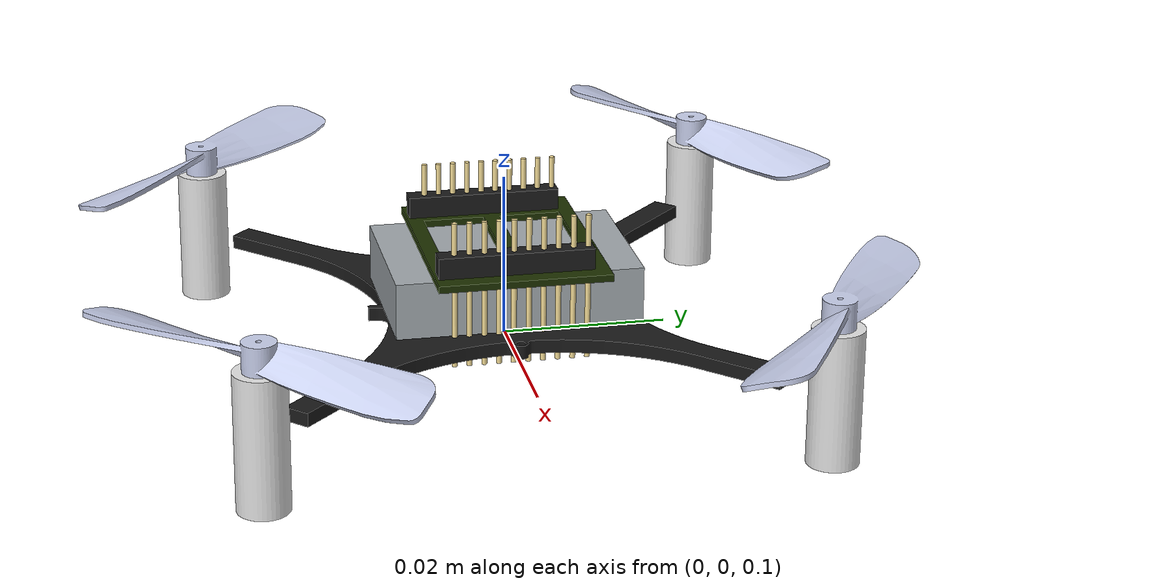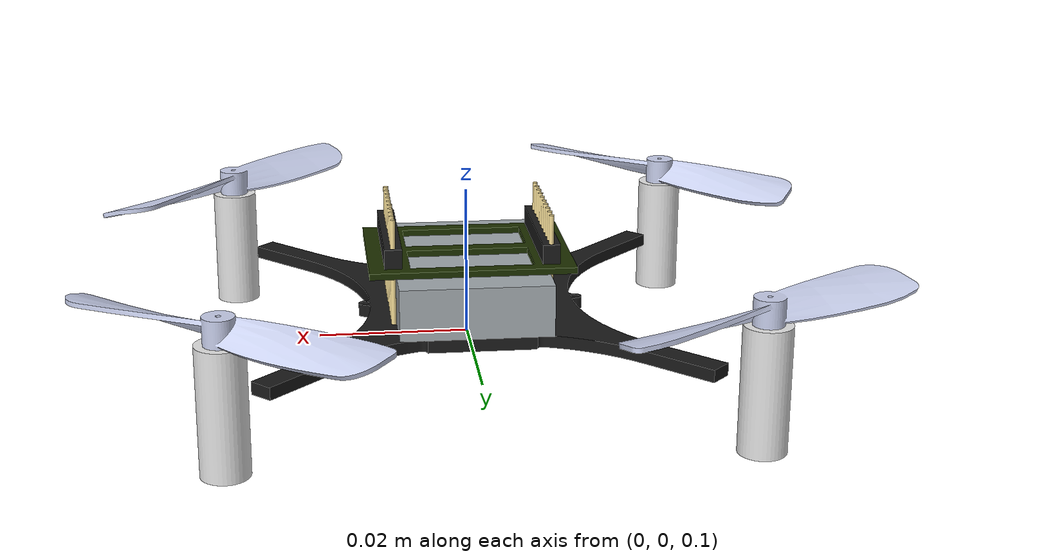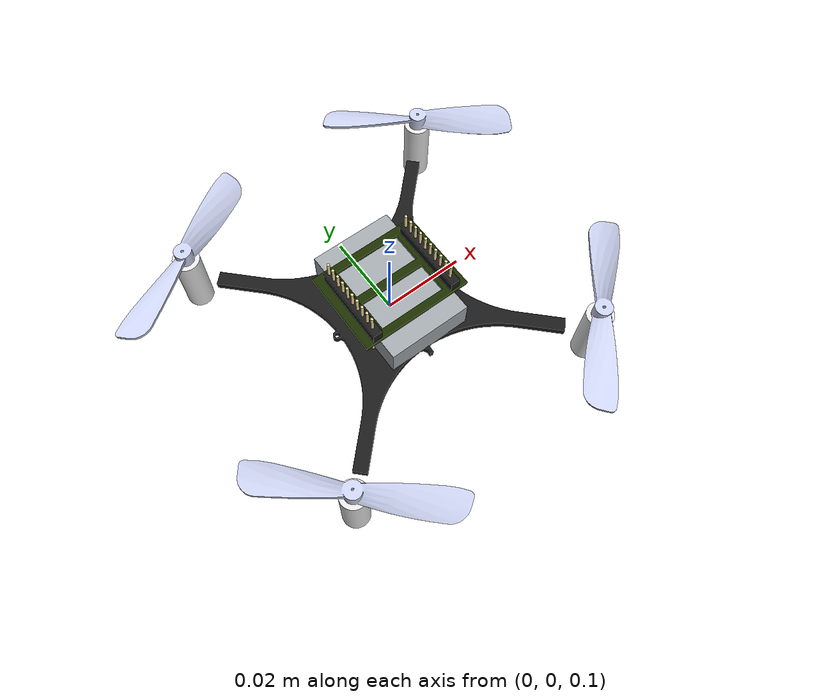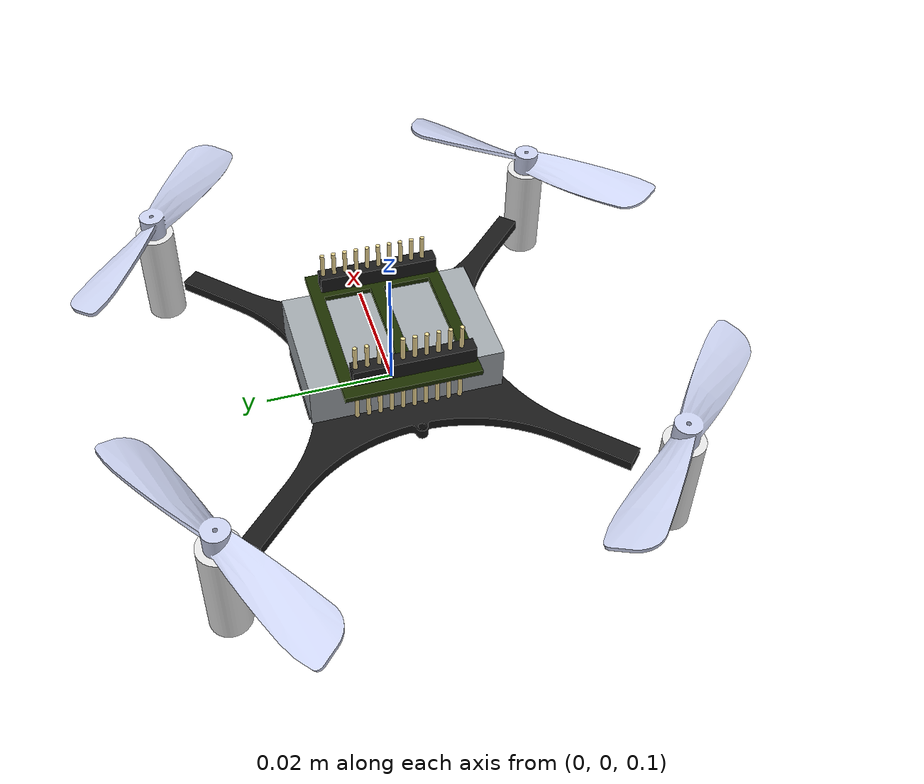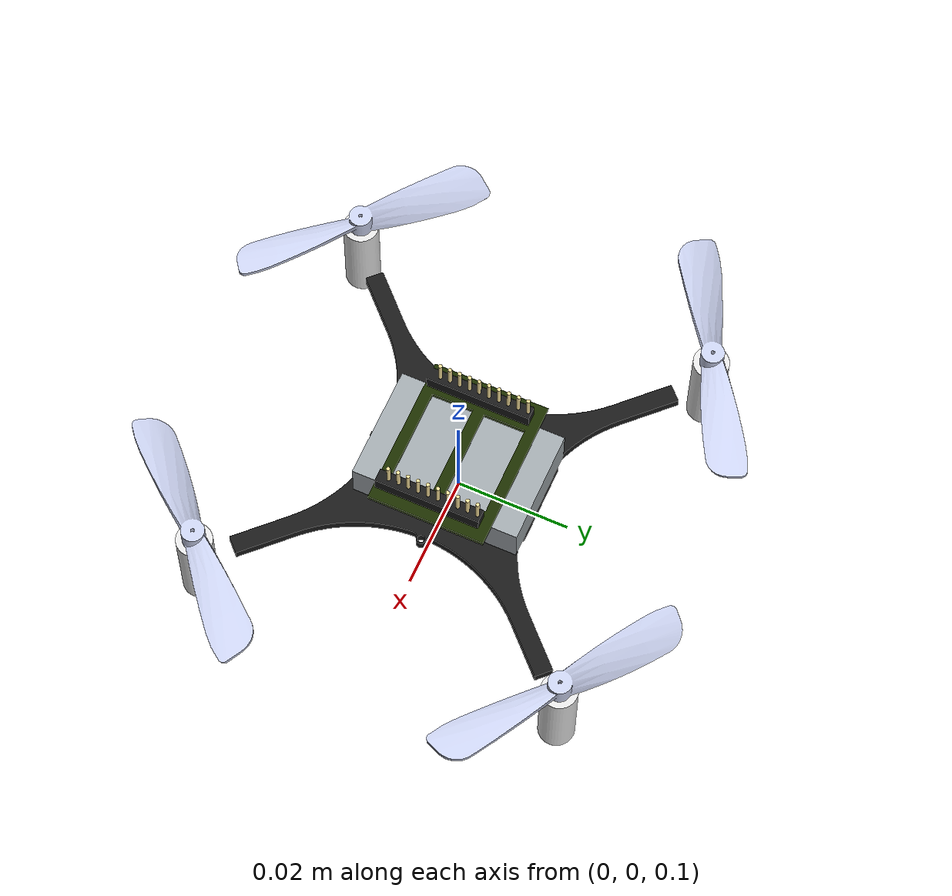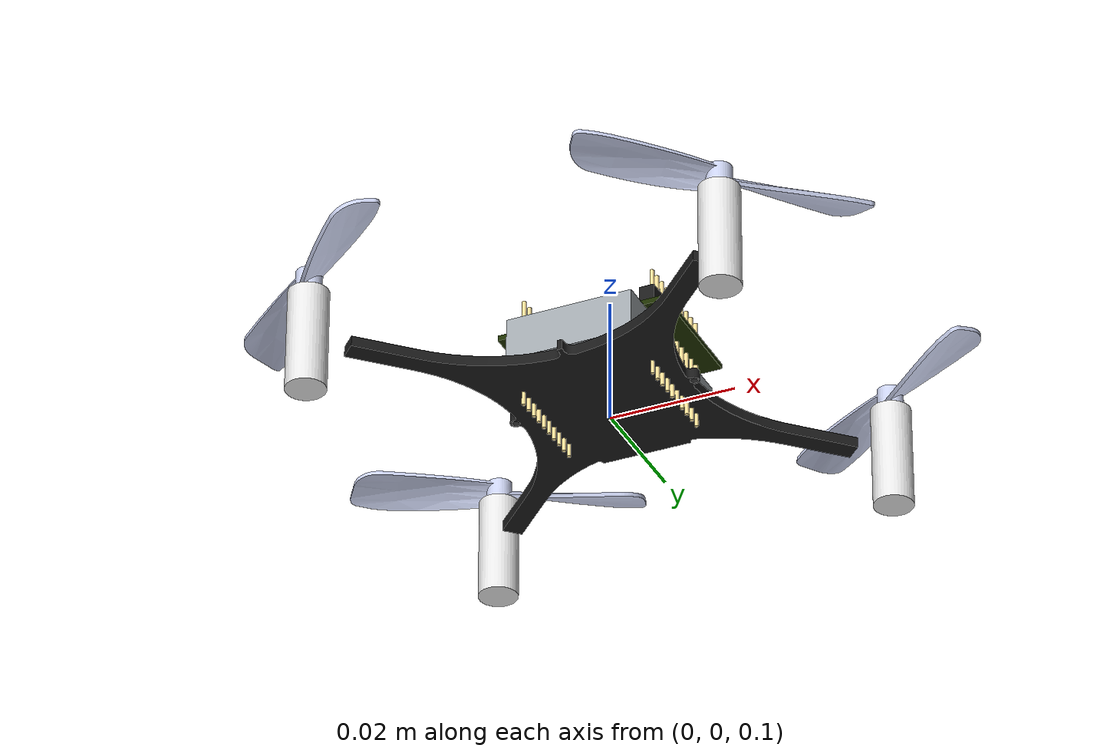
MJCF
<mujoco model="MuJoCo Model">
  <compiler angle="radian"/>

  <default>
    <geom type="mesh"/>
    <site group="5"/>
  </default>

  <asset>
    <material name="polished_plastic" rgba="0.631 0.659 0.678 1"/>
    <material name="polished_gold" rgba="0.969 0.878 0.6 1"/>
    <material name="medium_gloss_plastic" rgba="0.109 0.184 0 1"/>
    <material name="propeller_plastic" rgba="0.792 0.82 0.933 1"/>
    <material name="white"/>
    <material name="body_frame_plastic" rgba="0.102 0.102 0.102 1"/>
    <material name="burnished_chrome" rgba="0.898 0.898 0.898 1"/>
    <mesh name="cf2_0" file="../assets/cf2_0.obj"/>
    <mesh name="cf2_1" file="../assets/cf2_1.obj"/>
    <mesh name="cf2_2" file="../assets/cf2_2.obj"/>
    <mesh name="cf2_3" file="../assets/cf2_3.obj"/>
    <mesh name="cf2_4" file="../assets/cf2_4.obj"/>
    <mesh name="cf2_5" file="../assets/cf2_5.obj"/>
    <mesh name="cf2_collision_0" file="../assets/cf2_collision_0.obj"/>
    <mesh name="cf2_collision_1" file="../assets/cf2_collision_1.obj"/>
    <mesh name="cf2_collision_2" file="../assets/cf2_collision_2.obj"/>
    <mesh name="cf2_collision_3" file="../assets/cf2_collision_3.obj"/>
    <mesh name="cf2_collision_4" file="../assets/cf2_collision_4.obj"/>
    <mesh name="cf2_collision_5" file="../assets/cf2_collision_5.obj"/>
    <mesh name="cf2_collision_6" file="../assets/cf2_collision_6.obj"/>
    <mesh name="cf2_collision_7" file="../assets/cf2_collision_7.obj"/>
    <mesh name="cf2_collision_8" file="../assets/cf2_collision_8.obj"/>
    <mesh name="cf2_collision_9" file="../assets/cf2_collision_9.obj"/>
    <mesh name="cf2_collision_10" file="../assets/cf2_collision_10.obj"/>
    <mesh name="cf2_collision_11" file="../assets/cf2_collision_11.obj"/>
    <mesh name="cf2_collision_12" file="../assets/cf2_collision_12.obj"/>
    <mesh name="cf2_collision_13" file="../assets/cf2_collision_13.obj"/>
    <mesh name="cf2_collision_14" file="../assets/cf2_collision_14.obj"/>
    <mesh name="cf2_collision_15" file="../assets/cf2_collision_15.obj"/>
    <mesh name="cf2_collision_16" file="../assets/cf2_collision_16.obj"/>
    <mesh name="cf2_collision_17" file="../assets/cf2_collision_17.obj"/>
    <mesh name="cf2_collision_18" file="../assets/cf2_collision_18.obj"/>
    <mesh name="cf2_collision_19" file="../assets/cf2_collision_19.obj"/>
    <mesh name="cf2_collision_20" file="../assets/cf2_collision_20.obj"/>
    <mesh name="cf2_collision_21" file="../assets/cf2_collision_21.obj"/>
    <mesh name="cf2_collision_22" file="../assets/cf2_collision_22.obj"/>
    <mesh name="cf2_collision_23" file="../assets/cf2_collision_23.obj"/>
    <mesh name="cf2_collision_24" file="../assets/cf2_collision_24.obj"/>
    <mesh name="cf2_collision_25" file="../assets/cf2_collision_25.obj"/>
    <mesh name="cf2_collision_26" file="../assets/cf2_collision_26.obj"/>
    <mesh name="cf2_collision_27" file="../assets/cf2_collision_27.obj"/>
    <mesh name="cf2_collision_28" file="../assets/cf2_collision_28.obj"/>
    <mesh name="cf2_collision_29" file="../assets/cf2_collision_29.obj"/>
    <mesh name="cf2_collision_30" file="../assets/cf2_collision_30.obj"/>
  </asset>

  <worldbody>
    <light name="top" pos="0 0 1" dir="0 0 -1"/>
    <body name="cf2" pos="0 0 0.1">
      <joint type="free" limited="false" actuatorfrclimited="false"/>
      <geom name="cf2_0" contype="0" conaffinity="0" group="2" material="propeller_plastic" mesh="cf2_0"/>
      <geom name="cf2_1" contype="0" conaffinity="0" group="2" material="medium_gloss_plastic" mesh="cf2_1"/>
      <geom name="cf2_2" contype="0" conaffinity="0" group="2" material="polished_gold" mesh="cf2_2"/>
      <geom name="cf2_3" contype="0" conaffinity="0" group="2" material="polished_plastic" mesh="cf2_3"/>
      <geom name="cf2_4" contype="0" conaffinity="0" group="2" material="burnished_chrome" mesh="cf2_4"/>
      <geom name="cf2_5" contype="0" conaffinity="0" group="2" material="body_frame_plastic" mesh="cf2_5"/>
      <geom name="cf2_collision_0" group="3" mesh="cf2_collision_0"/>
      <geom name="cf2_collision_1" group="3" mesh="cf2_collision_1"/>
      <geom name="cf2_collision_2" group="3" mesh="cf2_collision_2"/>
      <geom name="cf2_collision_3" group="3" mesh="cf2_collision_3"/>
      <geom name="cf2_collision_4" group="3" mesh="cf2_collision_4"/>
      <geom name="cf2_collision_5" group="3" mesh="cf2_collision_5"/>
      <geom name="cf2_collision_6" group="3" mesh="cf2_collision_6"/>
      <geom name="cf2_collision_7" group="3" mesh="cf2_collision_7"/>
      <geom name="cf2_collision_8" group="3" mesh="cf2_collision_8"/>
      <geom name="cf2_collision_9" group="3" mesh="cf2_collision_9"/>
      <geom name="cf2_collision_10" group="3" mesh="cf2_collision_10"/>
      <geom name="cf2_collision_11" group="3" mesh="cf2_collision_11"/>
      <geom name="cf2_collision_12" group="3" mesh="cf2_collision_12"/>
      <geom name="cf2_collision_13" group="3" mesh="cf2_collision_13"/>
      <geom name="cf2_collision_14" group="3" mesh="cf2_collision_14"/>
      <geom name="cf2_collision_15" group="3" mesh="cf2_collision_15"/>
      <geom name="cf2_collision_16" group="3" mesh="cf2_collision_16"/>
      <geom name="cf2_collision_17" group="3" mesh="cf2_collision_17"/>
      <geom name="cf2_collision_18" group="3" mesh="cf2_collision_18"/>
      <geom name="cf2_collision_19" group="3" mesh="cf2_collision_19"/>
      <geom name="cf2_collision_20" group="3" mesh="cf2_collision_20"/>
      <geom name="cf2_collision_21" group="3" mesh="cf2_collision_21"/>
      <geom name="cf2_collision_22" group="3" mesh="cf2_collision_22"/>
      <geom name="cf2_collision_23" group="3" mesh="cf2_collision_23"/>
      <geom name="cf2_collision_24" group="3" mesh="cf2_collision_24"/>
      <geom name="cf2_collision_25" group="3" mesh="cf2_collision_25"/>
      <geom name="cf2_collision_26" group="3" mesh="cf2_collision_26"/>
      <geom name="cf2_collision_27" group="3" mesh="cf2_collision_27"/>
      <geom name="cf2_collision_28" group="3" mesh="cf2_collision_28"/>
      <geom name="cf2_collision_29" group="3" mesh="cf2_collision_29"/>
      <geom name="cf2_collision_30" group="3" mesh="cf2_collision_30"/>
      <site name="imu" pos="0 0 0"/>
      <site name="actuation" pos="0 0 0"/>
    </body>
  </worldbody>

  <actuator>
    <general name="body_thrust" site="actuation" ctrlrange="0 0.35" gear="0 0 1 0 0 0"/>
    <general name="x_moment" site="actuation" ctrlrange="-1 1" gear="0 0 0 -1e-05 0 0"/>
    <general name="y_moment" site="actuation" ctrlrange="-1 1" gear="0 0 0 0 -1e-05 0"/>
    <general name="z_moment" site="actuation" ctrlrange="-1 1" gear="0 0 0 0 0 -1e-05"/>
  </actuator>
</mujoco>
